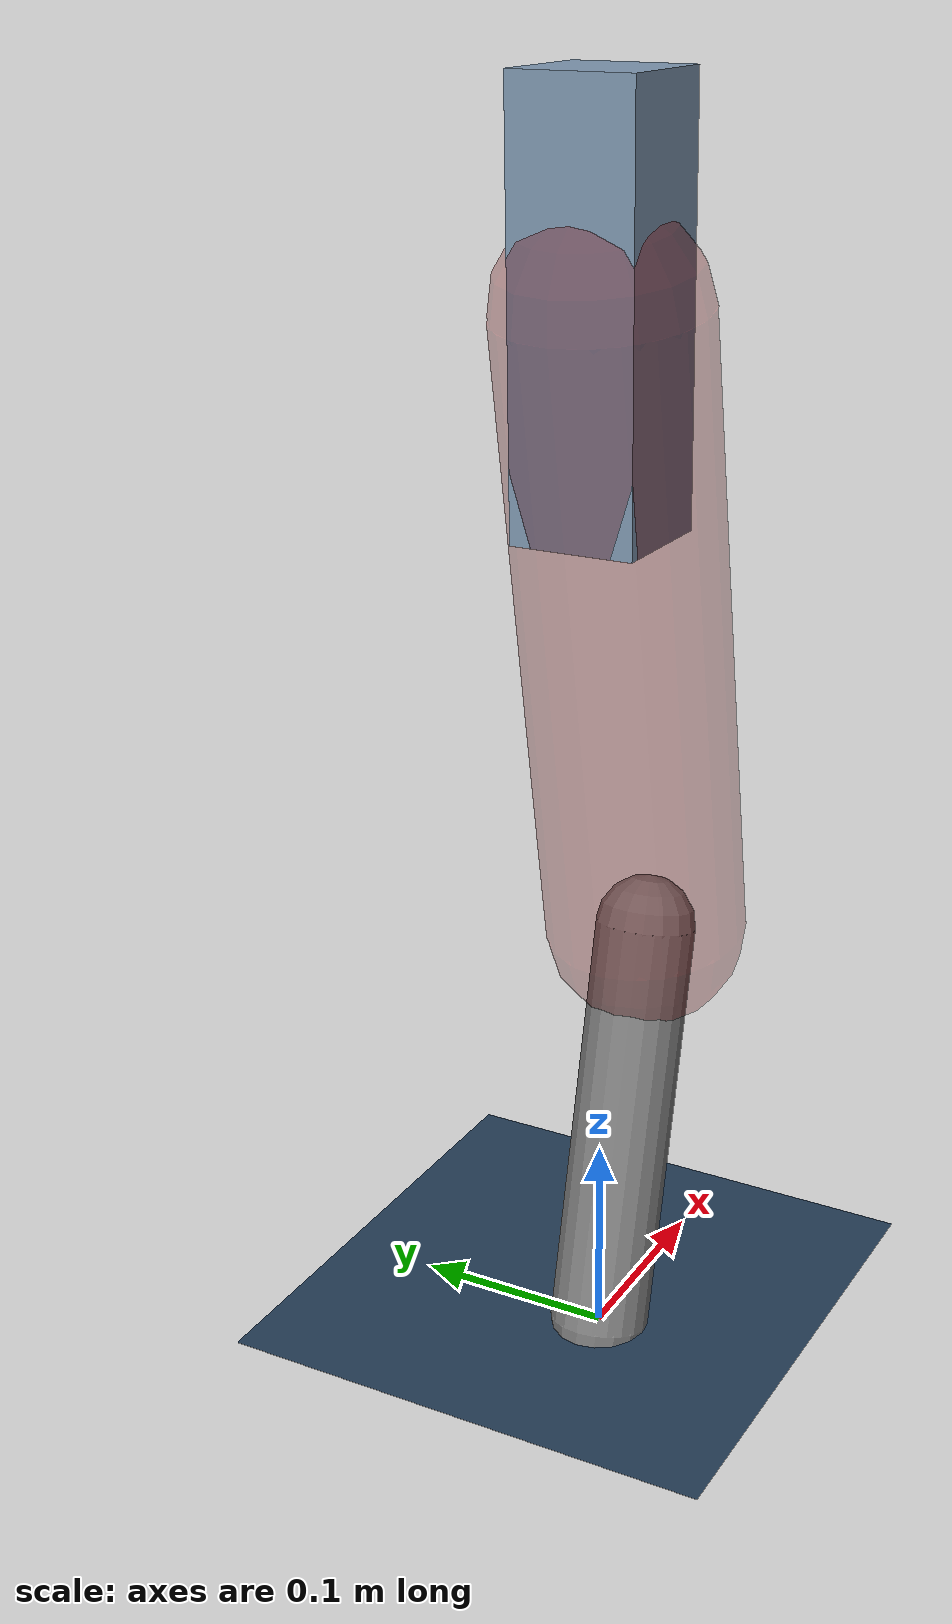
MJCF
<mujoco model="Hopper2D">
	<compiler inertiafromgeom="true" angle="radian" />
	<option timestep="0.001" integrator="implicit" cone="elliptic" solver="Newton" tolerance="1e-10" />

	<default>
		<geom contype="1" conaffinity="1" condim="3" friction="2 0.005 0.0001" solref="0.005 1" />
		<joint limited="true" damping="0.1" />
	</default>

	<asset>
		<texture name="skybox" type="skybox" builtin="gradient" rgb1=".4 .6 .8" rgb2="0 0 0" width="800" height="800" />
		<texture name="grid" type="2d" builtin="checker" rgb1=".1 .2 .3" rgb2=".2 .3 .4" width="300" height="300" mark="edge" markrgb=".2 .3 .4" />
		<material name="ground" texture="grid" texrepeat="1 1" texuniform="true" reflectance="0.1" />
		<material name="leg" rgba="0.5 0.6 0.7 1" />
	</asset>

	<worldbody>

		<geom name="floor" type="plane" size="5 5 0.25" material="ground" />

		<light directional="false" diffuse="0.8 0.8 0.8" specular="0.3 0.3 0.3" pos="0 0 2" dir="0 0 -1" />
		<light mode="targetbodycom" target="base" directional="false" diffuse="0.8 0.8 0.8" specular="0.3 0.3 0.3" pos="0 0 2" dir="0 0 -1" />

		<camera name="fixed" pos="0 -2 1" xyaxes="1 0 0 0 0 1" />
		<camera name="tracking" mode="trackcom" pos="0 -3 1" />

		<body name="root" pos="0 0 0.5128800640838399">
			<joint name="slide_x" type="slide" axis="1 0 0" range="-100 100" />
			<joint name="slide_z" type="slide" axis="0 0 1" range="0 10" />

			<body name="base" pos="0 0 0">
				<geom name="torso" type="box" size="0.03 0.03 0.1" mass="3.23" material="leg" />

				<body name="link1" pos="0 0 0" euler="0 1.4116109841077782 0">
					<joint type="hinge" axis="0 -1 0" pos="0 0 0" name="hinge1" limited="true" range="-3.14 3.14" stiffness="0" damping="0.1" />
					<geom name="thigh" type="capsule" fromto="0 0 0 0.3141623384764628 0 0" size="0.05" rgba="0.5 0 0 0.3" mass="1.0272383138864496" />

					<body name="link2" pos="0.3141623384764628 0 0" euler="0 0.40010460733728603 0">
						<joint type="hinge" axis="0 -1 0" pos="0 0 0" name="hinge2" limited="true" range="-3.14 3.14" stiffness="0" damping="0.1" />
						<geom name="shank" type="capsule" fromto="0 0 0 0.20871772560737709 0 0" size="0.025" mass="0.40824595304663935" />

					</body>
				</body>
			</body>
		</body>
	</worldbody>

	<actuator>
		<motor name="torque1" joint="hinge1" ctrlrange="-114.35738557544052 114.35738557544052" ctrllimited="true" gear="1" />
		<motor name="torque2" joint="hinge2" ctrlrange="-137.8150512422539 137.8150512422539" ctrllimited="true" gear="1" />
	</actuator>
</mujoco>
